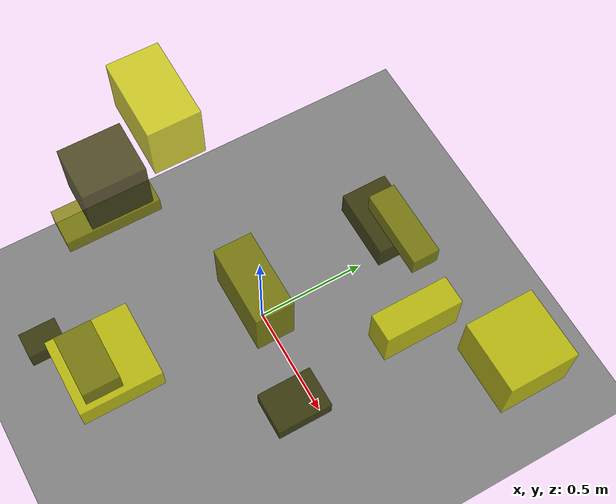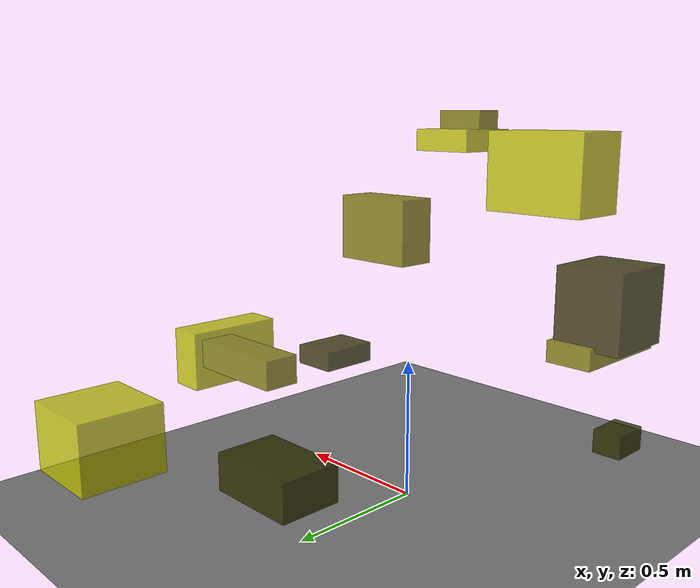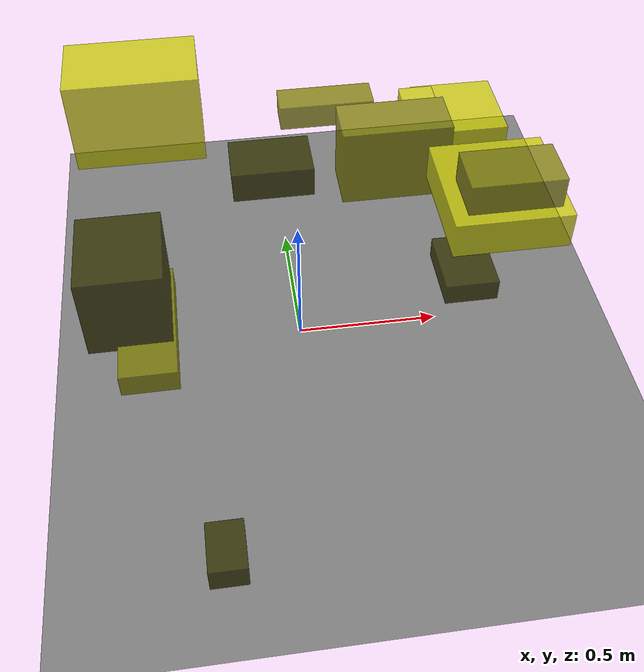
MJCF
<?xml version="1.0"?>
<mujoco model="obstacle_scene">
  <compiler angle="radian" coordinate="local"/>
  <option timestep="0.001" gravity="0 0 -9.81"/>

  <asset>
    <material name="obstacle_mat" rgba="0.8 0.8 0.0 0.8"/>
    <material name="ground_mat" rgba="0.5 0.5 0.5 1"/>
  </asset>

  <worldbody>
    <!-- Ground plane -->
    <geom name="ground" type="plane" size="3 3 0.1" material="ground_mat"/>

    <!-- Obstacles -->
    <body name="obstacle_0" pos="-0.534176 -0.393463 0.731683">
      <geom name="obs_0" type="box" size="0.119533 0.133622 0.133675" rgba="0.2 0.2 0.0 0.8"/>
    </body>
    <body name="obstacle_1" pos="0.268835 -0.156177 0.928704">
      <geom name="obs_1" type="box" size="0.156289 0.073444 0.119149" rgba="0.5 0.5 0.0 0.8"/>
    </body>
    <body name="obstacle_2" pos="-0.438391 -0.166257 1.173070">
      <geom name="obs_2" type="box" size="0.170055 0.102513 0.125401" rgba="0.8 0.8 0.0 0.8"/>
    </body>
    <body name="obstacle_3" pos="0.541106 -0.142576 0.390668">
      <geom name="obs_3" type="box" size="0.087467 0.115871 0.038436" rgba="0.2 0.2 0.0 0.8"/>
    </body>
    <body name="obstacle_4" pos="0.171237 0.563604 0.583120">
      <geom name="obs_4" type="box" size="0.169891 0.057829 0.045677" rgba="0.5 0.5 0.0 0.8"/>
    </body>
    <body name="obstacle_5" pos="0.388874 -0.742311 1.240075">
      <geom name="obs_5" type="box" size="0.134432 0.139978 0.044888" rgba="0.8 0.8 0.0 0.8"/>
    </body>
    <body name="obstacle_6" pos="-0.034852 0.616894 0.272872">
      <geom name="obs_6" type="box" size="0.157013 0.105194 0.062686" rgba="0.2 0.2 0.0 0.8"/>
    </body>
    <body name="obstacle_7" pos="-0.489147 -0.437882 0.576819">
      <geom name="obs_7" type="box" size="0.081981 0.203724 0.037064" rgba="0.5 0.5 0.0 0.8"/>
    </body>
    <body name="obstacle_8" pos="0.746647 0.797075 0.226335">
      <geom name="obs_8" type="box" size="0.164702 0.160665 0.130990" rgba="0.8 0.8 0.0 0.8"/>
    </body>
    <body name="obstacle_9" pos="-0.331348 -0.896097 0.054820">
      <geom name="obs_9" type="box" size="0.059703 0.083841 0.048690" rgba="0.2 0.2 0.0 0.8"/>
    </body>
    <body name="obstacle_10" pos="0.395666 -0.788434 1.295285">
      <geom name="obs_10" type="box" size="0.106384 0.061960 0.066942" rgba="0.5 0.5 0.0 0.8"/>
    </body>
    <body name="obstacle_11" pos="0.507942 0.415013 0.519320">
      <geom name="obs_11" type="box" size="0.060760 0.167080 0.099470" rgba="0.8 0.8 0.0 0.8"/>
    </body>
  </worldbody>
</mujoco>
